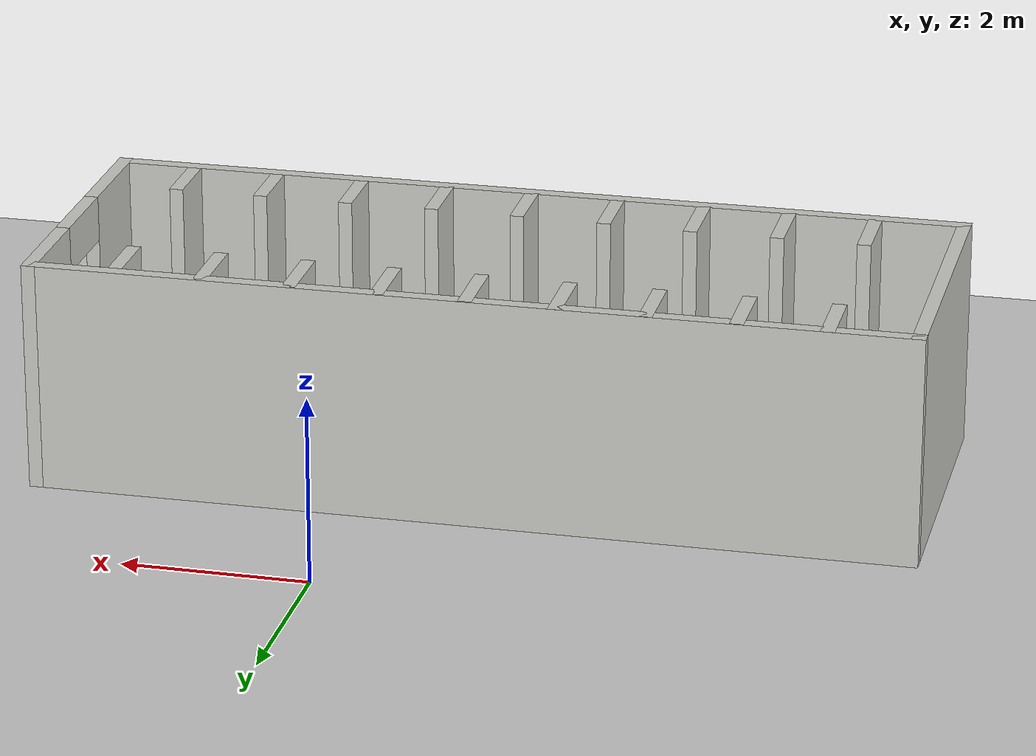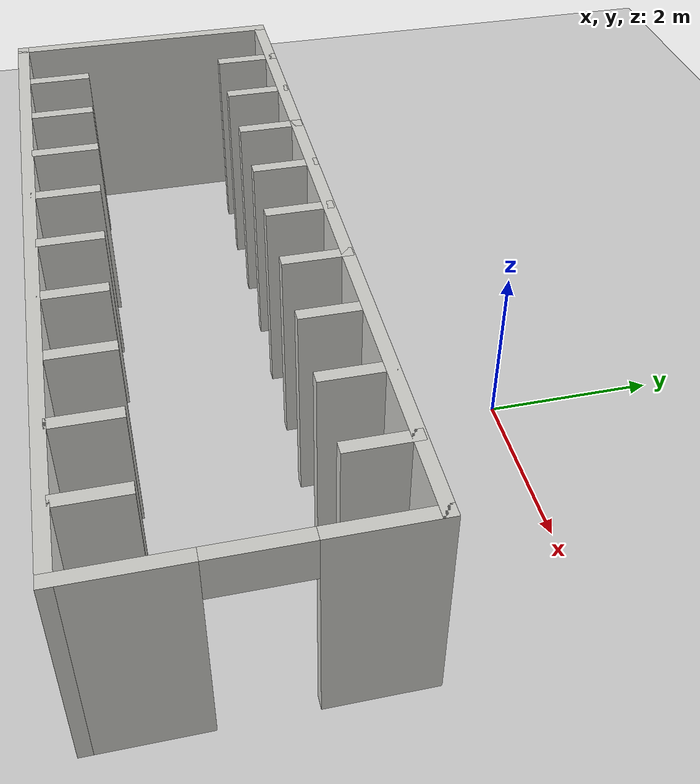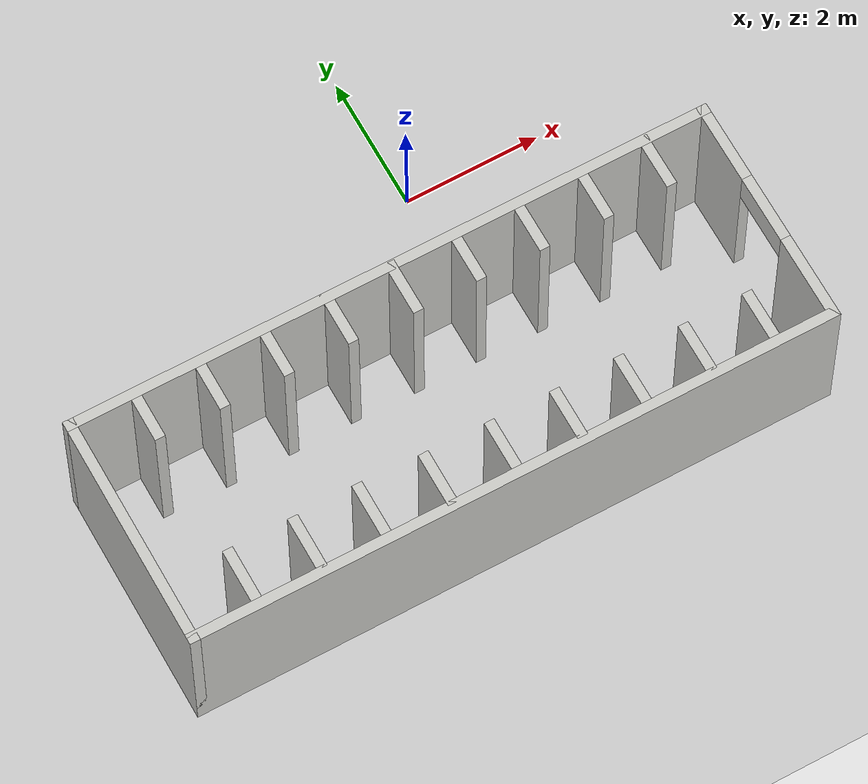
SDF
<sdf version="1.6">
 <world name="default">
  <light name="sun" type="directional">
   <pose>0 0 10 0 -0 0</pose>
   <diffuse>0.8 0.8 0.8 1</diffuse>
   <specular>0.2 0.2 0.2 1</specular>
   <attenuation>
    <range>1000</range>
    <constant>0.9</constant>
    <linear>0.01</linear>
    <quadratic>0.001</quadratic>
   </attenuation>
   <direction>-0.5 0.1 -0.9</direction>
  </light>
  <model name="ground_plane">
   <static>1</static>
   <link name="link">
    <collision name="collision">
     <geometry><plane><normal>0 0 1</normal><size>100 100</size></plane></geometry>
     <surface><friction><ode><mu>100</mu><mu2>50</mu2></ode></friction></surface>
    </collision>
    <visual name="visual">
     <cast_shadows>0</cast_shadows>
     <geometry><plane><normal>0 0 1</normal><size>100 100</size></plane></geometry>
     <material>
      <script><uri>file://media/materials/scripts/gazebo.material</uri><name>Gazebo/Grey</name></script>
     </material>
    </visual>
   </link>
  </model>
  <gravity>0 0 -9.8</gravity>
  <magnetic_field>6e-06 2.3e-05 -4.2e-05</magnetic_field>
  <atmosphere type="adiabatic"/>
  <physics name="default_physics" default="0" type="ode">
   <max_step_size>0.001</max_step_size>
   <real_time_factor>1</real_time_factor>
   <real_time_update_rate>1000</real_time_update_rate>
  </physics>
  <scene><ambient>0.4 0.4 0.4 1</ambient><background>0.7 0.7 0.7 1</background><shadows>1</shadows></scene>
  <spherical_coordinates>
   <surface_model>EARTH_WGS84</surface_model>
   <latitude_deg>0</latitude_deg>
   <longitude_deg>0</longitude_deg>
   <elevation>0</elevation>
   <heading_deg>0</heading_deg>
  </spherical_coordinates>
  <model name="whiteHospitalV2">
   <pose>-1.20673 -3.47359 0 0 -0 0</pose>
   <link name="Wall_18">
    <collision name="Wall_18_Collision">
     <geometry><box><size>0.8 0.15 2.5</size></box></geometry>
     <pose>0 0 1.25 0 -0 0</pose>
    </collision>
    <visual name="Wall_18_Visual">
     <pose>0 0 1.25 0 -0 0</pose>
     <geometry><box><size>0.8 0.15 2.5</size></box></geometry>
     <material>
      <script><uri>file://media/materials/scripts/gazebo.material</uri><name>Gazebo/CeilingTiled</name></script>
      <ambient>1 1 1 1</ambient>
     </material>
     <meta><layer>0</layer></meta>
    </visual>
    <pose>-3.75265 1.34941 0 0 0 -1.5708</pose>
   </link>
   <link name="Wall_20">
    <collision name="Wall_20_Collision">
     <geometry><box><size>0.8 0.15 2.5</size></box></geometry>
     <pose>0 0 1.25 0 -0 0</pose>
    </collision>
    <visual name="Wall_20_Visual">
     <pose>0 0 1.25 0 -0 0</pose>
     <geometry><box><size>0.8 0.15 2.5</size></box></geometry>
     <material>
      <script><uri>file://media/materials/scripts/gazebo.material</uri><name>Gazebo/CeilingTiled</name></script>
      <ambient>1 1 1 1</ambient>
     </material>
     <meta><layer>0</layer></meta>
    </visual>
    <pose>-2.82153 1.33507 0 0 0 -1.5708</pose>
   </link>
   <link name="Wall_22">
    <collision name="Wall_22_Collision">
     <geometry><box><size>0.8 0.15 2.5</size></box></geometry>
     <pose>0 0 1.25 0 -0 0</pose>
    </collision>
    <visual name="Wall_22_Visual">
     <pose>0 0 1.25 0 -0 0</pose>
     <geometry><box><size>0.8 0.15 2.5</size></box></geometry>
     <material>
      <script><uri>file://media/materials/scripts/gazebo.material</uri><name>Gazebo/CeilingTiled</name></script>
      <ambient>1 1 1 1</ambient>
     </material>
     <meta><layer>0</layer></meta>
    </visual>
    <pose>-1.88213 1.34285 0 0 0 -1.5708</pose>
   </link>
   <link name="Wall_24">
    <collision name="Wall_24_Collision">
     <geometry><box><size>0.8 0.15 2.5</size></box></geometry>
     <pose>0 0 1.25 0 -0 0</pose>
    </collision>
    <visual name="Wall_24_Visual">
     <pose>0 0 1.25 0 -0 0</pose>
     <geometry><box><size>0.8 0.15 2.5</size></box></geometry>
     <material>
      <script><uri>file://media/materials/scripts/gazebo.material</uri><name>Gazebo/CeilingTiled</name></script>
      <ambient>1 1 1 1</ambient>
     </material>
     <meta><layer>0</layer></meta>
    </visual>
    <pose>-0.940908 1.34871 0 0 0 -1.5708</pose>
   </link>
   <link name="Wall_26">
    <collision name="Wall_26_Collision">
     <geometry><box><size>0.8 0.15 2.5</size></box></geometry>
     <pose>0 0 1.25 0 -0 0</pose>
    </collision>
    <visual name="Wall_26_Visual">
     <pose>0 0 1.25 0 -0 0</pose>
     <geometry><box><size>0.8 0.15 2.5</size></box></geometry>
     <material>
      <script><uri>file://media/materials/scripts/gazebo.material</uri><name>Gazebo/CeilingTiled</name></script>
      <ambient>1 1 1 1</ambient>
     </material>
     <meta><layer>0</layer></meta>
    </visual>
    <pose>0.001836 1.33053 0 0 0 -1.5708</pose>
   </link>
   <link name="Wall_28">
    <collision name="Wall_28_Collision">
     <geometry><box><size>0.8 0.15 2.5</size></box></geometry>
     <pose>0 0 1.25 0 -0 0</pose>
    </collision>
    <visual name="Wall_28_Visual">
     <pose>0 0 1.25 0 -0 0</pose>
     <geometry><box><size>0.8 0.15 2.5</size></box></geometry>
     <material>
      <script><uri>file://media/materials/scripts/gazebo.material</uri><name>Gazebo/CeilingTiled</name></script>
      <ambient>1 1 1 1</ambient>
     </material>
     <meta><layer>0</layer></meta>
    </visual>
    <pose>0.935377 1.33487 0 0 0 -1.5708</pose>
   </link>
   <link name="Wall_46">
    <collision name="Wall_46_Collision">
     <geometry><box><size>0.8 0.15 2.5</size></box></geometry>
     <pose>0 0 1.25 0 -0 0</pose>
    </collision>
    <visual name="Wall_46_Visual">
     <pose>0 0 1.25 0 -0 0</pose>
     <geometry><box><size>0.8 0.15 2.5</size></box></geometry>
     <material>
      <script><uri>file://media/materials/scripts/gazebo.material</uri><name>Gazebo/CeilingTiled</name></script>
      <ambient>1 1 1 1</ambient>
     </material>
     <meta><layer>0</layer></meta>
    </visual>
    <pose>1.8683 1.32034 0 0 0 -1.5708</pose>
   </link>
   <link name="Wall_48">
    <collision name="Wall_48_Collision">
     <geometry><box><size>0.8 0.15 2.5</size></box></geometry>
     <pose>0 0 1.25 0 -0 0</pose>
    </collision>
    <visual name="Wall_48_Visual">
     <pose>0 0 1.25 0 -0 0</pose>
     <geometry><box><size>0.8 0.15 2.5</size></box></geometry>
     <material>
      <script><uri>file://media/materials/scripts/gazebo.material</uri><name>Gazebo/CeilingTiled</name></script>
      <ambient>1 1 1 1</ambient>
     </material>
     <meta><layer>0</layer></meta>
    </visual>
    <pose>2.81792 1.31236 0 0 0 -1.5708</pose>
   </link>
   <link name="Wall_50">
    <collision name="Wall_50_Collision">
     <geometry><box><size>0.8 0.15 2.5</size></box></geometry>
     <pose>0 0 1.25 0 -0 0</pose>
    </collision>
    <visual name="Wall_50_Visual">
     <pose>0 0 1.25 0 -0 0</pose>
     <geometry><box><size>0.8 0.15 2.5</size></box></geometry>
     <material>
      <script><uri>file://media/materials/scripts/gazebo.material</uri><name>Gazebo/CeilingTiled</name></script>
      <ambient>1 1 1 1</ambient>
     </material>
     <meta><layer>0</layer></meta>
    </visual>
    <pose>3.76755 1.32832 0 0 0 -1.5708</pose>
   </link>
   <link name="Wall_52">
    <pose>4.675 0 0 0 0 -1.5708</pose>
    <visual name="Wall_52_Visual_0">
     <pose>-1.14914 0 1.25 0 -0 0</pose>
     <geometry><box><size>1.20173 0.15 2.5</size></box></geometry>
     <material>
      <script><uri>file://media/materials/scripts/gazebo.material</uri><name>Gazebo/CeilingTiled</name></script>
      <ambient>1 1 1 1</ambient>
     </material>
     <meta><layer>0</layer></meta>
    </visual>
    <collision name="Wall_52_Collision_0">
     <geometry><box><size>1.20173 0.15 2.5</size></box></geometry>
     <pose>-1.14914 0 1.25 0 -0 0</pose>
    </collision>
    <visual name="Wall_52_Visual_1">
     <pose>1.10086 0 1.25 0 -0 0</pose>
     <geometry><box><size>1.29827 0.15 2.5</size></box></geometry>
     <material>
      <script><uri>file://media/materials/scripts/gazebo.material</uri><name>Gazebo/CeilingTiled</name></script>
      <ambient>1 1 1 1</ambient>
     </material>
     <meta><layer>0</layer></meta>
    </visual>
    <collision name="Wall_52_Collision_1">
     <geometry><box><size>1.29827 0.15 2.5</size></box></geometry>
     <pose>1.10086 0 1.25 0 -0 0</pose>
    </collision>
    <visual name="Wall_52_Visual_2">
     <pose>-0.048269 0 2.25 0 -0 0</pose>
     <geometry><box><size>1 0.15 0.5</size></box></geometry>
     <material>
      <script><uri>file://media/materials/scripts/gazebo.material</uri><name>Gazebo/CeilingTiled</name></script>
      <ambient>1 1 1 1</ambient>
     </material>
     <meta><layer>0</layer></meta>
    </visual>
    <collision name="Wall_52_Collision_2">
     <geometry><box><size>1 0.15 0.5</size></box></geometry>
     <pose>-0.048269 0 2.25 0 -0 0</pose>
    </collision>
   </link>
   <link name="Wall_54">
    <collision name="Wall_54_Collision">
     <geometry><box><size>0.8 0.15 2.5</size></box></geometry>
     <pose>0 0 1.25 0 -0 0</pose>
    </collision>
    <visual name="Wall_54_Visual">
     <pose>0 0 1.25 0 -0 0</pose>
     <geometry><box><size>0.8 0.15 2.5</size></box></geometry>
     <material>
      <script><uri>file://media/materials/scripts/gazebo.material</uri><name>Gazebo/CeilingTiled</name></script>
      <ambient>1 1 1 1</ambient>
     </material>
     <meta><layer>0</layer></meta>
    </visual>
    <pose>-2.79409 -1.22884 0 0 0 -1.5708</pose>
   </link>
   <link name="Wall_56">
    <collision name="Wall_56_Collision">
     <geometry><box><size>0.8 0.15 2.5</size></box></geometry>
     <pose>0 0 1.25 0 -0 0</pose>
    </collision>
    <visual name="Wall_56_Visual">
     <pose>0 0 1.25 0 -0 0</pose>
     <geometry><box><size>0.8 0.15 2.5</size></box></geometry>
     <material>
      <script><uri>file://media/materials/scripts/gazebo.material</uri><name>Gazebo/CeilingTiled</name></script>
      <ambient>1 1 1 1</ambient>
     </material>
     <meta><layer>0</layer></meta>
    </visual>
    <pose>-1.86053 -1.21901 0 0 0 -1.5708</pose>
   </link>
   <link name="Wall_62">
    <collision name="Wall_62_Collision">
     <geometry><box><size>0.8 0.15 2.5</size></box></geometry>
     <pose>0 0 1.25 0 -0 0</pose>
    </collision>
    <visual name="Wall_62_Visual">
     <pose>0 0 1.25 0 -0 0</pose>
     <geometry><box><size>0.8 0.15 2.5</size></box></geometry>
     <material>
      <script><uri>file://media/materials/scripts/gazebo.material</uri><name>Gazebo/CeilingTiled</name></script>
      <ambient>1 1 1 1</ambient>
     </material>
     <meta><layer>0</layer></meta>
    </visual>
    <pose>-3.72623 -1.2222 0 0 0 -1.5708</pose>
   </link>
   <link name="Wall_64">
    <collision name="Wall_64_Collision">
     <geometry><box><size>9.5 0.15 2.5</size></box></geometry>
     <pose>0 0 1.25 0 -0 0</pose>
    </collision>
    <visual name="Wall_64_Visual">
     <pose>0 0 1.25 0 -0 0</pose>
     <geometry><box><size>9.5 0.15 2.5</size></box></geometry>
     <material>
      <script><uri>file://media/materials/scripts/gazebo.material</uri><name>Gazebo/CeilingTiled</name></script>
      <ambient>1 1 1 1</ambient>
     </material>
     <meta><layer>0</layer></meta>
    </visual>
    <pose>0 1.675 0 0 -0 3.14159</pose>
   </link>
   <link name="Wall_65">
    <collision name="Wall_65_Collision">
     <geometry><box><size>3.5 0.15 2.5</size></box></geometry>
     <pose>0 0 1.25 0 -0 0</pose>
    </collision>
    <visual name="Wall_65_Visual">
     <pose>0 0 1.25 0 -0 0</pose>
     <geometry><box><size>3.5 0.15 2.5</size></box></geometry>
     <material>
      <script><uri>file://media/materials/scripts/gazebo.material</uri><name>Gazebo/CeilingTiled</name></script>
      <ambient>1 1 1 1</ambient>
     </material>
     <meta><layer>0</layer></meta>
    </visual>
    <pose>-4.675 0 0 0 0 -1.5708</pose>
   </link>
   <link name="Wall_67">
    <collision name="Wall_67_Collision">
     <geometry><box><size>9.5 0.15 2.5</size></box></geometry>
     <pose>0 0 1.25 0 -0 0</pose>
    </collision>
    <visual name="Wall_67_Visual">
     <pose>0 0 1.25 0 -0 0</pose>
     <geometry><box><size>9.5 0.15 2.5</size></box></geometry>
     <material>
      <script><uri>file://media/materials/scripts/gazebo.material</uri><name>Gazebo/CeilingTiled</name></script>
      <ambient>1 1 1 1</ambient>
     </material>
     <meta><layer>0</layer></meta>
    </visual>
    <pose>0 -1.675 0 0 -0 0</pose>
   </link>
   <link name="Wall_72">
    <collision name="Wall_72_Collision">
     <geometry><box><size>0.8 0.15 2.5</size></box></geometry>
     <pose>0 0 1.25 0 -0 0</pose>
    </collision>
    <visual name="Wall_72_Visual">
     <pose>0 0 1.25 0 -0 0</pose>
     <geometry><box><size>0.8 0.15 2.5</size></box></geometry>
     <material>
      <script><uri>file://media/materials/scripts/gazebo.material</uri><name>Gazebo/CeilingTiled</name></script>
      <ambient>1 1 1 1</ambient>
     </material>
     <meta><layer>0</layer></meta>
    </visual>
    <pose>-0.914159 -1.25576 0 0 0 -1.5708</pose>
   </link>
   <link name="Wall_74">
    <collision name="Wall_74_Collision">
     <geometry><box><size>0.75 0.15 2.5</size></box></geometry>
     <pose>0 0 1.25 0 -0 0</pose>
    </collision>
    <visual name="Wall_74_Visual">
     <pose>0 0 1.25 0 -0 0</pose>
     <geometry><box><size>0.75 0.15 2.5</size></box></geometry>
     <material>
      <script><uri>file://media/materials/scripts/gazebo.material</uri><name>Gazebo/CeilingTiled</name></script>
      <ambient>1 1 1 1</ambient>
     </material>
     <meta><layer>0</layer></meta>
    </visual>
    <pose>0.040592 -1.24694 0 0 0 -1.5708</pose>
   </link>
   <link name="Wall_76">
    <collision name="Wall_76_Collision">
     <geometry><box><size>0.75 0.15 2.5</size></box></geometry>
     <pose>0 0 1.25 0 -0 0</pose>
    </collision>
    <visual name="Wall_76_Visual">
     <pose>0 0 1.25 0 -0 0</pose>
     <geometry><box><size>0.75 0.15 2.5</size></box></geometry>
     <material>
      <script><uri>file://media/materials/scripts/gazebo.material</uri><name>Gazebo/CeilingTiled</name></script>
      <ambient>1 1 1 1</ambient>
     </material>
     <meta><layer>0</layer></meta>
    </visual>
    <pose>0.987253 -1.26312 0 0 0 -1.5708</pose>
   </link>
   <link name="Wall_78">
    <collision name="Wall_78_Collision">
     <geometry><box><size>0.75 0.15 2.5</size></box></geometry>
     <pose>0 0 1.25 0 -0 0</pose>
    </collision>
    <visual name="Wall_78_Visual">
     <pose>0 0 1.25 0 -0 0</pose>
     <geometry><box><size>0.75 0.15 2.5</size></box></geometry>
     <material>
      <script><uri>file://media/materials/scripts/gazebo.material</uri><name>Gazebo/CeilingTiled</name></script>
      <ambient>1 1 1 1</ambient>
     </material>
     <meta><layer>0</layer></meta>
    </visual>
    <pose>1.942 -1.24694 0 0 0 -1.5708</pose>
   </link>
   <link name="Wall_80">
    <collision name="Wall_80_Collision">
     <geometry><box><size>0.75 0.15 2.5</size></box></geometry>
     <pose>0 0 1.25 0 -0 0</pose>
    </collision>
    <visual name="Wall_80_Visual">
     <pose>0 0 1.25 0 -0 0</pose>
     <geometry><box><size>0.75 0.15 2.5</size></box></geometry>
     <material>
      <script><uri>file://media/materials/scripts/gazebo.material</uri><name>Gazebo/CeilingTiled</name></script>
      <ambient>1 1 1 1</ambient>
     </material>
     <meta><layer>0</layer></meta>
    </visual>
    <pose>2.89676 -1.25503 0 0 0 -1.5708</pose>
   </link>
   <link name="Wall_82">
    <collision name="Wall_82_Collision">
     <geometry><box><size>0.75 0.15 2.5</size></box></geometry>
     <pose>0 0 1.25 0 -0 0</pose>
    </collision>
    <visual name="Wall_82_Visual">
     <pose>0 0 1.25 0 -0 0</pose>
     <geometry><box><size>0.75 0.15 2.5</size></box></geometry>
     <material>
      <script><uri>file://media/materials/scripts/gazebo.material</uri><name>Gazebo/CeilingTiled</name></script>
      <ambient>1 1 1 1</ambient>
     </material>
     <meta><layer>0</layer></meta>
    </visual>
    <pose>3.84342 -1.25503 0 0 0 -1.5708</pose>
   </link>
   <static>1</static>
  </model>
 </world>
</sdf>
